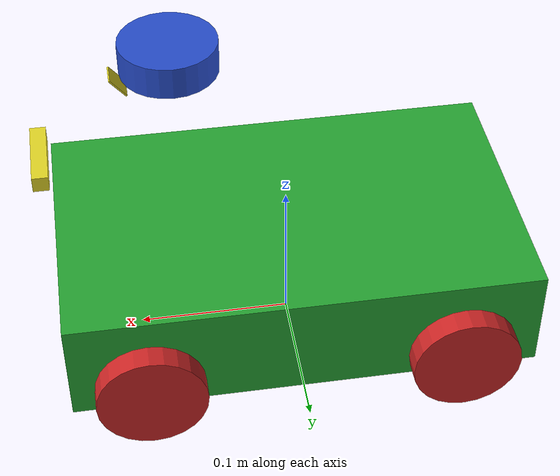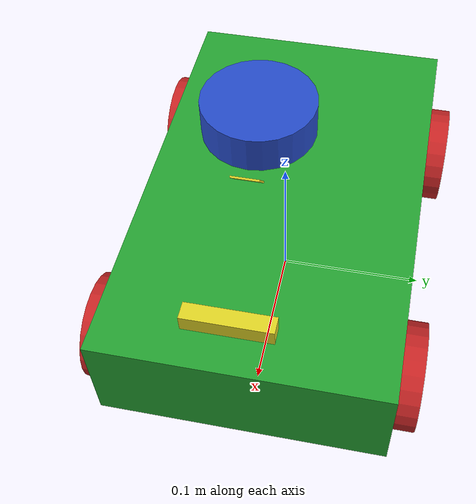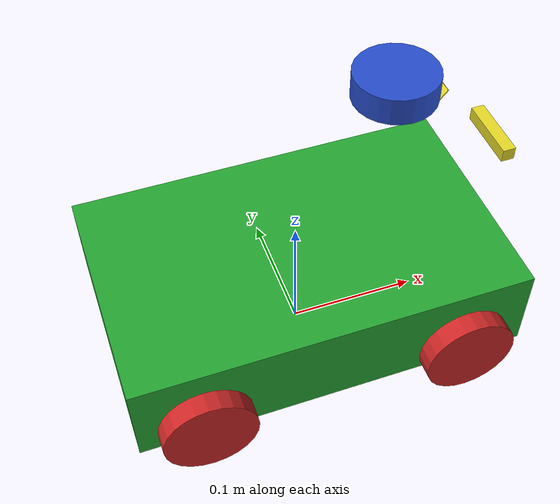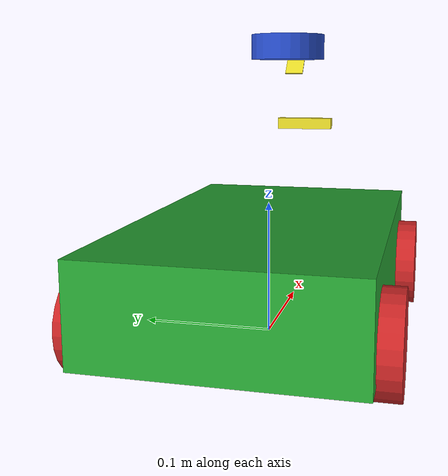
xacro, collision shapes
<?xml version="1.0"?>
<robot name="uni_car" xmlns:xacro="http://wiki.ros.org/xacro">
  <xacro:arg name="laser_visual" default="false"/>
  <xacro:arg name="imu_visual"   default="false"/>
  <xacro:arg name="camera_visual" default="false"/>
  <xacro:arg name="sonar_visual" default="false"/>
  <xacro:arg name="use_sim_time" default="true"/>

  <!-- Include xacro for materials -->
  <xacro:include filename="$(find uni_car_ros2)/urdf/materials.xacro"/>

  <!-- Properties -->
  <xacro:property name="robot_namespace" value=""/>

  <xacro:property name="steer_effort" value="10.0"/>
  <xacro:property name="steer_velocity" value="5.0"/>
  <xacro:property name="steer_limit_deg" value="30.0"/>

  <!-- Math constants -->
  <xacro:property name="deg_to_rad" value="0.01745329251994329577"/>
  <xacro:property name="math_pi"        value="3.141592653589793" />
  <xacro:property name="math_pi_over_2" value="1.5707963267948966" />
  <xacro:property name="math_pi_over_4" value="0.785398163397448" />

  <!-- Robot base dimensions -->
  <xacro:property name="base_length" value="0.300" />
  <xacro:property name="base_width" value="0.185" />
  <xacro:property name="base_height" value="0.07" />
  <xacro:property name="base_mass" value="0.5" />
  <xacro:property name="ground_clearance" value="0.019" />
  <xacro:property name="wheel_separation" value="0.190" />
  <xacro:property name="wheel_base" value="0.200" />

  <xacro:property name="wheel_separation_h" value="${wheel_base}" />
  <xacro:property name="wheel_separation_w" value="${wheel_separation}" />

  <!-- Wheel link dimensions -->
  <xacro:property name="wheel_radius" value="0.035" />
  <xacro:property name="wheel_thickness" value="0.025" />
  <xacro:property name="wheel_mass" value="0.02" />

  <!-- Steering link dimensions -->
  <xacro:property name="steer_radius" value="0.001" />
  <xacro:property name="steer_thickness" value="0.001" />
  <xacro:property name="steer_mass" value="0.001" />
  <xacro:property name="steer_offset" value="0.002" />
  <xacro:property name="steer_height" value="0.002" />

  <!-- Gazebo plugins for ROS2 Control -->
  <gazebo>
    <plugin filename="libgazebo_ros2_control.so" name="gazebo_ros2_control">
      <robot_param>robot_description</robot_param>
      <robot_param_node>robot_state_publisher</robot_param_node>
      <parameters>$(find uni_car_ros2)/config/ros2_controllers.yaml</parameters>
    </plugin>
  </gazebo>

<!-- Base footprint -->
<link name="base_footprint"/>

<joint name="base_footprint_joint" type="fixed">
  <origin xyz="0 0 ${ground_clearance}" rpy="0 0 0"/>
  <parent link="base_footprint"/>
  <child link="base_link"/>
</joint>

  <!-- Base link -->
  <link name="base_link">
    <visual>
      <origin xyz="0 0 0" rpy="0 0 0"/>
      <geometry>
        <mesh filename="package://uni_car_ros2/meshes/ROSCAR2_BASE.dae" scale="0.001 0.001 0.001"/>
      </geometry>
      <material name="green" />
    </visual>
    <collision>
      <origin xyz="0 0 ${base_height/2}" rpy="0 0 0"/>
      <geometry>
        <box size="${base_length} ${base_width} ${base_height}"/>
      </geometry>
    </collision>
    <inertial>
        <origin xyz="0 0 0" rpy="0 0 0"/>
        <mass value="0.85" />
        <inertia ixx="0.0022" ixy="0.0" ixz="0.0"
                 iyy="0.0021" iyz="0.0"
                 izz="0.0020" />
    </inertial>
  </link>

  <gazebo reference="base_link">
    <material>Gazebo/Green</material>
  </gazebo>

  <!-- Front steer and rear wheel joints required for ackermann_steering_controller -->
  <!-- Bicycle model front steer link (required for steer_drive_controller) -->
    <link name="front_steer_link">
      <visual>
        <origin xyz="0 0 0" rpy="0 0 0"/>
        <geometry>
          <cylinder radius="${steer_radius}" length="${steer_thickness}"/>
        </geometry>
        <material name="yellow" />
      </visual>
      <collision>
        <origin xyz="0 0 0" rpy="0 0 0"/>
        <geometry>
          <cylinder radius="${steer_radius}" length="${steer_thickness}"/>
        </geometry>
      </collision>
      <inertial>
        <origin xyz="0 0 0" rpy="0 0 0"/>
        <mass value="0.001" />
        <inertia ixx="0.001" ixy="0.0" ixz="0.0"
                 iyy="0.001" iyz="0.0"
                 izz="0.001" />
      </inertial>
    </link>

    <joint name="front_steer_joint" type="revolute">
      <parent link="base_link"/>
      <child link="front_steer_link"/>
      <origin xyz="${wheel_base/2} 0 ${wheel_radius-ground_clearance}" rpy="0 0 0"/>
      <axis xyz="0 0 1"/>
      <limit effort="${steer_effort}"
             lower="${-180.0 * deg_to_rad}" upper="${180.0 * deg_to_rad}"
             velocity="${steer_velocity}"/>
    </joint>

    <gazebo reference="front_steer_link">
      <material>Gazebo/Yellow</material>
    </gazebo>

  <!-- Bicycle model rear wheel link (required for steer_drive_controller) -->
    <link name="rear_wheel_link">
      <visual>
        <origin xyz="0 0 0" rpy="0 0 0"/>
        <geometry>
          <cylinder radius="${steer_radius}" length="${steer_thickness}"/>
        </geometry>
        <material name="yellow" />
      </visual>
      <collision>
        <origin xyz="0 0 0" rpy="0 0 0"/>
        <geometry>
          <cylinder radius="${steer_radius}" length="${steer_thickness}"/>
        </geometry>
      </collision>
      <inertial>
        <origin xyz="0 0 0" rpy="0 0 0"/>
        <mass value="0.001" />
        <inertia ixx="0.001" ixy="0.0" ixz="0.0"
                 iyy="0.001" iyz="0.0"
                 izz="0.001" />
      </inertial>
    </link>

    <joint name="rear_wheel_joint" type="continuous">
      <parent link="base_link"/>
      <child link="rear_wheel_link"/>
      <origin xyz="-${wheel_base/2} 0 0" rpy="0 0 0"/>
      <axis xyz="0 0 1"/>
    </joint>

    <gazebo reference="rear_wheel_link">
      <material>Gazebo/Yellow</material>
    </gazebo>

  <!-- front_right_steer, front_right_wheel -->
     <link name="front_right_steer_link">
      <visual>
        <origin xyz="0 0 0" rpy="0 0 0"/>
        <geometry>
          <cylinder radius="${steer_radius}" length="${steer_thickness}"/>
        </geometry>
        <material name="blue" />
      </visual>
      <collision>
        <origin xyz="0 0 0" rpy="0 0 0"/>
        <geometry>
          <cylinder radius="${steer_radius}" length="${steer_thickness}"/>
        </geometry>
      </collision>
      <inertial>
        <origin xyz="0 0 0" rpy="0 0 0"/>
        <mass value="0.001" />
        <inertia ixx="0.001" ixy="0.0" ixz="0.0"
                 iyy="0.001" iyz="0.0"
                 izz="0.001" />
      </inertial>
    </link>

    <joint name="front_right_steer_joint" type="revolute">
      <parent link="base_link"/>
      <child link="front_right_steer_link"/>
      <origin xyz="${wheel_base/2} -${wheel_separation/2} ${wheel_radius - ground_clearance}" rpy="0 0 0"/>
      <axis xyz="0 0 1"/>
      <limit effort="${steer_effort}"
             lower="-${steer_limit_deg * deg_to_rad}" upper="${steer_limit_deg * deg_to_rad}"
             velocity="${steer_velocity}"/>
    </joint>

    <gazebo reference="front_right_steer_link">
      <material>Gazebo/Blue</material>
    </gazebo>

    <link name="front_right_wheel_link">
      <visual>
        <origin xyz="0 0 0" rpy="${90*deg_to_rad} 0 0"/>
        <geometry>
          <mesh filename="package://uni_car_ros2/meshes/ROSCAR2_WheelRight.dae" scale="0.001 0.001 0.001"/>
        </geometry>
        <material name="red" />
      </visual>
      <collision>
        <origin xyz="0 0 0" rpy="0 0 0"/>
        <geometry>
          <cylinder radius="${wheel_radius}" length="${wheel_thickness}"/>
        </geometry>
      </collision>
      <inertial>
        <origin xyz="0 0 0" rpy="0 0 0"/>
        <mass value="0.028" />
        <inertia ixx="0.00001" ixy="0.0" ixz="0.0"
                 iyy="0.00001" iyz="0.0"
                 izz="0.00001" />
      </inertial>
    </link>

    <joint name="front_right_wheel_joint" type="continuous">
      <parent link="front_right_steer_link"/>
      <child link="front_right_wheel_link"/>
      <origin xyz="0 0 0" rpy="-${90*deg_to_rad} 0 0"/>
      <axis xyz="0 0 1"/>
    </joint>

    <gazebo reference="front_right_wheel_link">
      <mu1>10</mu1>
      <mu2>10</mu2>
      <kp>1000000.0</kp>
      <kd>1.0</kd>
      <minDepth>0.001</minDepth>
      <maxVel>0.1</maxVel>
      <fdir1>1 0 0</fdir1>
      <material>Gazebo/Red</material>
    </gazebo>

  <!-- front_left_steer, front_left_wheel -->
    <link name="front_left_steer_link">
      <visual>
        <origin xyz="0 0 0" rpy="0 0 0"/>
        <geometry>
          <cylinder radius="${steer_radius}" length="${steer_thickness}"/>
        </geometry>
        <material name="blue" />
      </visual>
      <collision>
        <origin xyz="0 0 0" rpy="0 0 0"/>
        <geometry>
          <cylinder radius="${steer_radius}" length="${steer_thickness}"/>
        </geometry>
      </collision>
      <inertial>
        <origin xyz="0 0 0" rpy="0 0 0"/>
        <mass value="0.001" />
        <inertia ixx="0.001" ixy="0.0" ixz="0.0"
                 iyy="0.001" iyz="0.0"
                 izz="0.001" />
      </inertial>
    </link>

    <joint name="front_left_steer_joint" type="revolute">
      <parent link="base_link"/>
      <child link="front_left_steer_link"/>
      <origin xyz="${wheel_base/2} ${wheel_separation/2} ${wheel_radius - ground_clearance}" rpy="0 0 0"/>
      <axis xyz="0 0 1"/>
      <limit effort="${steer_effort}"
             lower="-${steer_limit_deg * deg_to_rad}" upper="${steer_limit_deg * deg_to_rad}"
             velocity="${steer_velocity}"/>
    </joint>

    <gazebo reference="front_left_steer_link">
      <material>Gazebo/Blue</material>
    </gazebo>

    <link name="front_left_wheel_link">
      <visual>
        <origin xyz="0 0 0" rpy="${90*deg_to_rad} 0 0"/>
        <geometry>
          <mesh filename="package://uni_car_ros2/meshes/ROSCAR2_WheelLeft.dae" scale="0.001 0.001 0.001"/>
        </geometry>
        <material name="red" />
      </visual>
      <collision>
        <origin xyz="0 0 0" rpy="0 0 0"/>
        <geometry>
          <cylinder radius="${wheel_radius}" length="${wheel_thickness}"/>
        </geometry>
      </collision>
      <inertial>
        <origin xyz="0 0 0" rpy="0 0 0"/>
        <mass value="0.028" />
        <inertia ixx="0.00001" ixy="0.0" ixz="0.0"
                 iyy="0.00001" iyz="0.0"
                 izz="0.00001" />
      </inertial>
    </link>

    <joint name="front_left_wheel_joint" type="continuous">
      <parent link="front_left_steer_link"/>
      <child link="front_left_wheel_link"/>
      <origin xyz="0 0 0" rpy="-${90*deg_to_rad} 0 0"/>
      <axis xyz="0 0 1"/>
    </joint>

    <gazebo reference="front_left_wheel_link">
      <mu1>10</mu1>
      <mu2>10</mu2>
      <kp>1000000.0</kp>
      <kd>1.0</kd>
      <minDepth>0.001</minDepth>
      <maxVel>0.1</maxVel>
      <fdir1>1 0 0</fdir1>
      <material>Gazebo/Red</material>
    </gazebo>

  <!-- rear_right_wheel -->
    <link name="rear_right_wheel_link">
      <visual>
        <origin xyz="0 0 0" rpy="${90*deg_to_rad} 0 0"/>
        <geometry>
          <mesh filename="package://uni_car_ros2/meshes/ROSCAR2_WheelRight.dae" scale="0.001 0.001 0.001"/>
        </geometry>
        <material name="red" />
      </visual>
      <collision>
        <origin xyz="0 0 0" rpy="0 0 0"/>
        <geometry>
          <cylinder radius="${wheel_radius}" length="${wheel_thickness}"/>
        </geometry>
      </collision>
      <inertial>
        <origin xyz="0 0 0" rpy="0 0 0"/>
        <mass value="0.028" />
        <inertia ixx="0.00001" ixy="0.0" ixz="0.0"
                 iyy="0.00001" iyz="0.0"
                 izz="0.00001" />
      </inertial>
    </link>

    <joint name="rear_right_wheel_joint" type="continuous">
      <parent link="base_link"/>
      <child link="rear_right_wheel_link"/>
      <origin xyz="-${wheel_base/2} -${wheel_separation/2} ${wheel_radius-ground_clearance}" rpy="-${90*deg_to_rad} 0 0"/>
      <axis xyz="0 0 1"/>
    </joint>

    <gazebo reference="rear_right_wheel_link">
      <mu1>10</mu1>
      <mu2>10</mu2>
      <kp>1000000.0</kp>
      <kd>1.0</kd>
      <minDepth>0.001</minDepth>
      <maxVel>0.1</maxVel>
      <fdir1>1 0 0</fdir1>
      <material>Gazebo/Red</material>
    </gazebo>

  <!-- rear_left_wheel -->
    <link name="rear_left_wheel_link">
      <visual>
        <origin xyz="0 0 0" rpy="${90*deg_to_rad} 0 0"/>
        <geometry>
          <mesh filename="package://uni_car_ros2/meshes/ROSCAR2_WheelLeft.dae" scale="0.001 0.001 0.001"/>
        </geometry>
        <material name="red" />
      </visual>
      <collision>
        <origin xyz="0 0 0" rpy="0 0 0"/>
        <geometry>
          <cylinder radius="${wheel_radius}" length="${wheel_thickness}"/>
        </geometry>
      </collision>
      <inertial>
        <origin xyz="0 0 0" rpy="0 0 0"/>
        <mass value="0.028" />
        <inertia ixx="0.00001" ixy="0.0" ixz="0.0"
                 iyy="0.00001" iyz="0.0"
                 izz="0.00001" />
      </inertial>
    </link>

    <joint name="rear_left_wheel_joint" type="continuous">
      <parent link="base_link"/>
      <child link="rear_left_wheel_link"/>
      <origin xyz="-${wheel_base/2} ${wheel_separation/2} ${wheel_radius-ground_clearance}" rpy="-${90*deg_to_rad} 0 0"/>
      <axis xyz="0 0 1"/>
    </joint>

    <gazebo reference="rear_left_wheel_link">
      <mu1>10</mu1>
      <mu2>10</mu2>
      <kp>1000000.0</kp>
      <kd>1.0</kd>
      <minDepth>0.001</minDepth>
      <maxVel>0.1</maxVel>
      <fdir1>1 0 0</fdir1>
      <material>Gazebo/Red</material>
    </gazebo>

<!-- imu_link -->
  <link name="imu_link" />

  <joint name="imu_joint" type="fixed">
    <parent link="base_link"/>
    <child link="imu_link"/>
    <origin xyz="0 0 0" rpy="0 0 0"/>
  </joint>

<!-- base_scan -->
  <link name="base_scan">
    <visual>
      <origin xyz="0 0 0" rpy="0 0 0"/>
      <geometry>
        <mesh filename="package://uni_car_ros2/meshes/ROSCAR2_LiDAR.dae" scale="0.001 0.001 0.001"/>
      </geometry>
      <material name="blue" />
    </visual>
    <collision>
      <origin xyz="0 0 0.10" rpy="0 0 0"/>
      <geometry>
        <cylinder radius="0.030" length="0.020"/>
      </geometry>
    </collision>
    <inertial>
        <origin xyz="0 0 0" rpy="0 0 0"/>
        <mass value="0.114" />
        <inertia ixx="0.001" ixy="0.0" ixz="0.0"
                 iyy="0.001" iyz="0.0"
                 izz="0.001" />
      </inertial>
  </link>

  <gazebo reference="base_scan">
    <material>Gazebo/Blue</material>
  </gazebo>

  <joint name="scan_joint" type="fixed">
    <parent link="base_link"/>
    <child link="base_scan"/>
    <origin xyz="0.070 0 0.099" rpy="0 0 0"/>
  </joint>

<!-- base_sonar_front -->
  <link name="base_sonar_front">
    <visual>
      <origin xyz="0 0 0" rpy="0 0 0"/>
      <geometry>
        <mesh filename="package://uni_car_ros2/meshes/ROSCAR2_Sonar.dae" scale="0.001 0.001 0.001"/>
      </geometry>
      <material name="yellow" />
    </visual>
    <collision>
      <origin xyz="0 0 0.10" rpy="0 0 0"/>
      <geometry>
        <box size="0.010 0.050 0.010"/>
      </geometry>
    </collision>
    <inertial>
        <origin xyz="0 0 0" rpy="0 0 0"/>
        <mass value="0.005" />
        <inertia ixx="0.001" ixy="0.0" ixz="0.0"
                 iyy="0.001" iyz="0.0"
                 izz="0.001" />
      </inertial>
  </link>

  <gazebo reference="base_sonar_front">
    <material>Gazebo/Blue</material>
  </gazebo>

  <joint name="sonar_joint_front" type="fixed">
    <parent link="base_link"/>
    <child link="base_sonar_front"/>
    <origin xyz="0.153 0 0.031" rpy="0 0 0"/>
  </joint>

<!-- base_camera -->
  <link name="base_camera">
    <visual>
      <origin xyz="-0.005 0 0" rpy="0 0 0"/>
      <geometry>
        <mesh filename="package://uni_car_ros2/meshes/ROSCAR2_PiCameraV2.dae" scale="0.001 0.001 0.001"/>
      </geometry>
      <material name="yellow" />
    </visual>
    <collision>
      <origin xyz="-0.005 0 0" rpy="0 0 0"/>
      <geometry>
        <box size="0.001 0.015 0.015"/>
      </geometry>
    </collision>
    <inertial>
        <origin xyz="0 0 0" rpy="0 0 0"/>
        <mass value="0.005" />
        <inertia ixx="0.001" ixy="0.0" ixz="0.0"
                 iyy="0.001" iyz="0.0"
                 izz="0.001" />
      </inertial>
  </link>

  <gazebo reference="base_camera">
    <material>Gazebo/Blue</material>
  </gazebo>

  <joint name="camera_joint" type="fixed">
    <parent link="base_link"/>
    <child link="base_camera"/>
    <origin xyz="0.105 0 0.180" rpy="0 ${40*deg_to_rad} 0"/>
  </joint>

<!-- Gazebo Plugins for ROS2 -->

<!-- IMU Plugin -->
  <gazebo reference="imu_link">
    <sensor name="imu_sensor" type="imu">
      <always_on>true</always_on>
      <update_rate>200</update_rate>
      <visualize>$(arg imu_visual)</visualize>
      <plugin filename="libgazebo_ros_imu_sensor.so" name="imu_plugin">
        <ros>
          <namespace>${robot_namespace}</namespace>
          <remapping>~/out:=imu</remapping>
        </ros>
        <initial_orientation_as_reference>false</initial_orientation_as_reference>
      </plugin>
    </sensor>
    <material>Gazebo/FlatBlack</material>
  </gazebo>

<!-- Laser Scanner Plugin -->
    <gazebo reference="base_scan">
        <material>Gazebo/LightBlue</material>
        <sensor type="ray" name="lds_lfcd_sensor">
            <pose>0 0 0 0 0 0</pose>
            <visualize>$(arg laser_visual)</visualize>
            <update_rate>5</update_rate>
            <ray>
                <scan>
                    <horizontal>
                        <samples>360</samples>
                        <resolution>1</resolution>
                        <min_angle>0.0</min_angle>
                        <max_angle>6.28319</max_angle>
                    </horizontal>
                </scan>
                <range>
                    <min>0.120</min>
                    <max>6.0</max>
                    <resolution>0.015</resolution>
                </range>
                <noise>
                    <type>gaussian</type>
                    <mean>0.0</mean>
                    <stddev>0.01</stddev>
                </noise>
            </ray>
            <plugin name="gazebo_ros_lds_lfcd_controller" filename="libgazebo_ros_ray_sensor.so">
                <ros>
                    <namespace>${robot_namespace}</namespace>
                    <remapping>~/out:=scan</remapping>
                </ros>
                <output_type>sensor_msgs/LaserScan</output_type>
                <frame_name>base_scan</frame_name>
            </plugin>
        </sensor>
    </gazebo>

<!-- Sonar Plugin -->
    <gazebo reference="base_sonar_front">
      <material>Gazebo/Grey</material>
      <sensor type="ray" name="sonar">
          <pose>0.153 0 0 0 0</pose>
          <visualize>$(arg sonar_visual)</visualize>
          <update_rate>5</update_rate>
          <ray>
            <scan>
              <horizontal>
                <samples>1</samples>
                <resolution>1.0</resolution>
                <min_angle>-0.025</min_angle>
                <max_angle>0.025</max_angle>
              </horizontal>
              <vertical>
                <samples>1</samples>
                <resolution>1</resolution>
                <min_angle>-0.025</min_angle>
                <max_angle>0.025</max_angle>
              </vertical>
            </scan>
            <range>
              <min>0.01</min>
              <max>2.00</max>
              <resolution>0.01</resolution>
            </range>
          </ray>
          <plugin filename="libgazebo_ros_ray_sensor.so" name="gazebo_ros_range">
            <ros>
              <namespace>${robot_namespace}</namespace>
              <remapping>~/out:=range_front</remapping>
            </ros>
            <output_type>sensor_msgs/Range</output_type>
            <radiation_type>ultrasound</radiation_type>
            <frame_name>base_sonar_front</frame_name>
          </plugin>
        </sensor>
    </gazebo>

<!-- Camera Plugin -->
  <gazebo reference="base_camera">
    <sensor type="camera" name="Pi Camera">
      <always_on>true</always_on>
      <visualize>$(arg camera_visual)</visualize>
      <update_rate>30.0</update_rate>
      <camera>
          <horizontal_fov>1.085595</horizontal_fov>
          <image>
              <width>320</width>
              <height>240</height>
              <format>R8G8B8</format>
          </image>
          <clip>
              <near>0.030</near>
              <far>100</far>
          </clip>
      </camera>
      <plugin name="camera_controller" filename="libgazebo_ros_camera.so">
        <ros>
          <namespace>${robot_namespace}</namespace>
          <remapping>image_raw:=camera/image_raw</remapping>
          <remapping>camera_info:=camera/camera_info</remapping>
        </ros>
        <camera_name>camera</camera_name>
        <frame_name>base_camera</frame_name>
        <hack_baseline>0.07</hack_baseline>
      </plugin>
    </sensor>
  </gazebo>

</robot>
